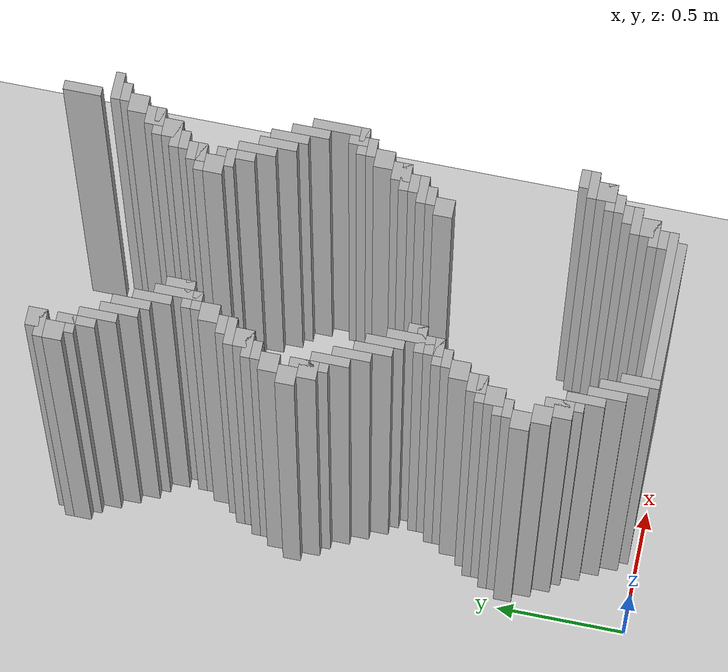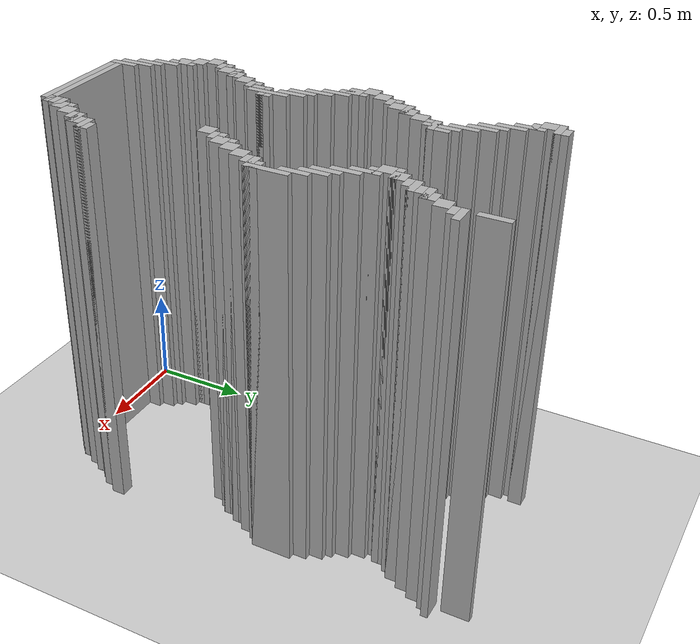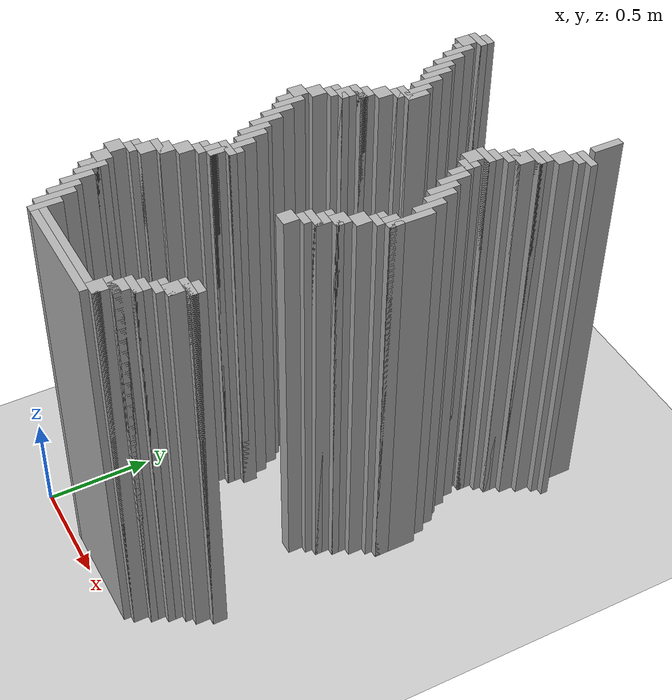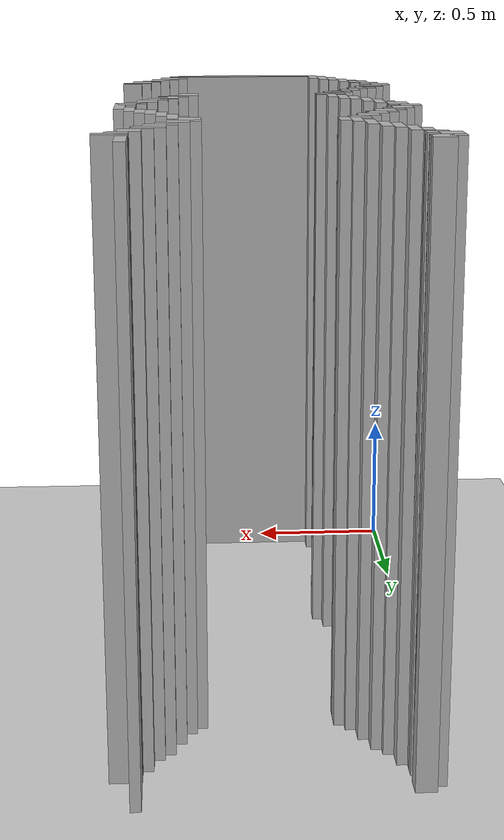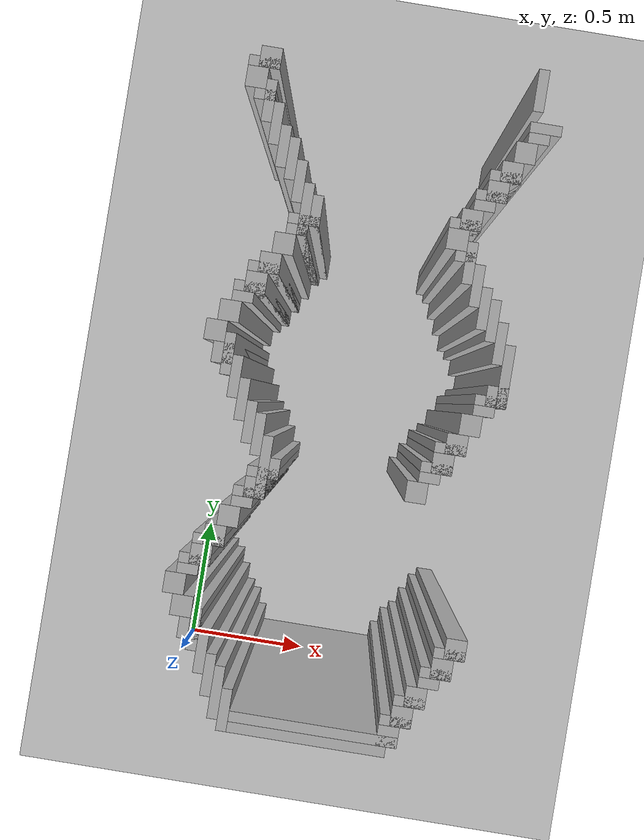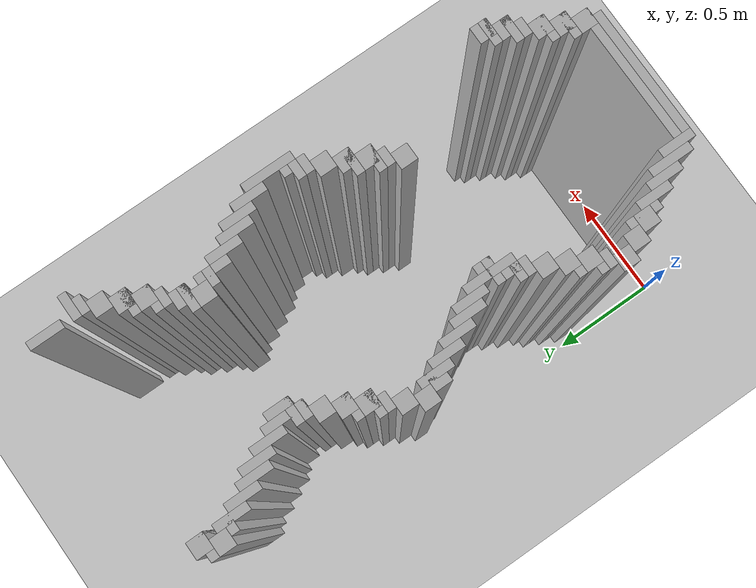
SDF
<sdf version="1.6">
 <world name="slam_world">
  <model name="ground_plane">
   <static>true</static>
   <link name="link">
    <collision name="collision">
     <geometry><plane><normal>0 0 1</normal><size>100 100</size></plane></geometry>
    </collision>
    <visual name="visual">
     <geometry><plane><normal>0 0 1</normal><size>100 100</size></plane></geometry>
     <material>
      <ambient>0.8 0.8 0.8 1</ambient>
      <diffuse>0.8 0.8 0.8 1</diffuse>
      <specular>0.8 0.8 0.8 1</specular>
     </material>
    </visual>
   </link>
  </model>
  <model name="wall_5102">
   <static>true</static>
   <pose>0.9918793503480278 2.262180974477958 1.0 0 0 0</pose>
   <link name="link">
    <collision name="collision">
     <geometry><box><size>0.03480278422273782 0.13921113689095127 2.0</size></box></geometry>
    </collision>
    <visual name="visual">
     <geometry><box><size>0.03480278422273782 0.13921113689095127 2.0</size></box></geometry>
     <material><ambient>0.5 0.5 0.5 1</ambient><diffuse>0.7 0.7 0.7 1</diffuse></material>
    </visual>
   </link>
  </model>
  <model name="wall_5117">
   <static>true</static>
   <pose>0.10440835266821345 2.2273781902552203 1.0 0 0 0</pose>
   <link name="link">
    <collision name="collision">
     <geometry><box><size>0.06960556844547564 0.06960556844547564 2.0</size></box></geometry>
    </collision>
    <visual name="visual">
     <geometry><box><size>0.06960556844547564 0.06960556844547564 2.0</size></box></geometry>
     <material><ambient>0.5 0.5 0.5 1</ambient><diffuse>0.7 0.7 0.7 1</diffuse></material>
    </visual>
   </link>
  </model>
  <model name="wall_5133">
   <static>true</static>
   <pose>0.08700696055684454 2.2099767981438516 1.0 0 0 0</pose>
   <link name="link">
    <collision name="collision">
     <geometry><box><size>0.10440835266821345 0.03480278422273782 2.0</size></box></geometry>
    </collision>
    <visual name="visual">
     <geometry><box><size>0.10440835266821345 0.03480278422273782 2.0</size></box></geometry>
     <material><ambient>0.5 0.5 0.5 1</ambient><diffuse>0.7 0.7 0.7 1</diffuse></material>
    </visual>
   </link>
  </model>
  <model name="wall_5148">
   <static>true</static>
   <pose>0.06960556844547564 2.1577726218097446 1.0 0 0 0</pose>
   <link name="link">
    <collision name="collision">
     <geometry><box><size>0.06960556844547564 0.06960556844547564 2.0</size></box></geometry>
    </collision>
    <visual name="visual">
     <geometry><box><size>0.06960556844547564 0.06960556844547564 2.0</size></box></geometry>
     <material><ambient>0.5 0.5 0.5 1</ambient><diffuse>0.7 0.7 0.7 1</diffuse></material>
    </visual>
   </link>
  </model>
  <model name="wall_5159">
   <static>true</static>
   <pose>0.12180974477958237 2.088167053364269 1.0 0 0 0</pose>
   <link name="link">
    <collision name="collision">
     <geometry><box><size>0.03480278422273782 0.13921113689095127 2.0</size></box></geometry>
    </collision>
    <visual name="visual">
     <geometry><box><size>0.03480278422273782 0.13921113689095127 2.0</size></box></geometry>
     <material><ambient>0.5 0.5 0.5 1</ambient><diffuse>0.7 0.7 0.7 1</diffuse></material>
    </visual>
   </link>
  </model>
  <model name="wall_5160">
   <static>true</static>
   <pose>1.0266821345707655 2.140371229698376 1.0 0 0 0</pose>
   <link name="link">
    <collision name="collision">
     <geometry><box><size>0.10440835266821345 0.03480278422273782 2.0</size></box></geometry>
    </collision>
    <visual name="visual">
     <geometry><box><size>0.10440835266821345 0.03480278422273782 2.0</size></box></geometry>
     <material><ambient>0.5 0.5 0.5 1</ambient><diffuse>0.7 0.7 0.7 1</diffuse></material>
    </visual>
   </link>
  </model>
  <model name="wall_5178">
   <static>true</static>
   <pose>0.10440835266821345 2.105568445475638 1.0 0 0 0</pose>
   <link name="link">
    <collision name="collision">
     <geometry><box><size>0.06960556844547564 0.03480278422273782 2.0</size></box></geometry>
    </collision>
    <visual name="visual">
     <geometry><box><size>0.06960556844547564 0.03480278422273782 2.0</size></box></geometry>
     <material><ambient>0.5 0.5 0.5 1</ambient><diffuse>0.7 0.7 0.7 1</diffuse></material>
    </visual>
   </link>
  </model>
  <model name="wall_5179">
   <static>true</static>
   <pose>1.0092807424593968 2.105568445475638 1.0 0 0 0</pose>
   <link name="link">
    <collision name="collision">
     <geometry><box><size>0.06960556844547564 0.03480278422273782 2.0</size></box></geometry>
    </collision>
    <visual name="visual">
     <geometry><box><size>0.06960556844547564 0.03480278422273782 2.0</size></box></geometry>
     <material><ambient>0.5 0.5 0.5 1</ambient><diffuse>0.7 0.7 0.7 1</diffuse></material>
    </visual>
   </link>
  </model>
  <model name="wall_5193">
   <static>true</static>
   <pose>0.15661252900232017 2.0185614849187936 1.0 0 0 0</pose>
   <link name="link">
    <collision name="collision">
     <geometry><box><size>0.03480278422273782 0.13921113689095127 2.0</size></box></geometry>
    </collision>
    <visual name="visual">
     <geometry><box><size>0.03480278422273782 0.13921113689095127 2.0</size></box></geometry>
     <material><ambient>0.5 0.5 0.5 1</ambient><diffuse>0.7 0.7 0.7 1</diffuse></material>
    </visual>
   </link>
  </model>
  <model name="wall_5194">
   <static>true</static>
   <pose>0.974477958236659 2.053364269141531 1.0 0 0 0</pose>
   <link name="link">
    <collision name="collision">
     <geometry><box><size>0.06960556844547564 0.06960556844547564 2.0</size></box></geometry>
    </collision>
    <visual name="visual">
     <geometry><box><size>0.06960556844547564 0.06960556844547564 2.0</size></box></geometry>
     <material><ambient>0.5 0.5 0.5 1</ambient><diffuse>0.7 0.7 0.7 1</diffuse></material>
    </visual>
   </link>
  </model>
  <model name="wall_5208">
   <static>true</static>
   <pose>0.191415313225058 1.948955916473318 1.0 0 0 0</pose>
   <link name="link">
    <collision name="collision">
     <geometry><box><size>0.03480278422273782 0.13921113689095127 2.0</size></box></geometry>
    </collision>
    <visual name="visual">
     <geometry><box><size>0.03480278422273782 0.13921113689095127 2.0</size></box></geometry>
     <material><ambient>0.5 0.5 0.5 1</ambient><diffuse>0.7 0.7 0.7 1</diffuse></material>
    </visual>
   </link>
  </model>
  <model name="wall_5209">
   <static>true</static>
   <pose>0.9396751740139211 1.9837587006960555 1.0 0 0 0</pose>
   <link name="link">
    <collision name="collision">
     <geometry><box><size>0.06960556844547564 0.06960556844547564 2.0</size></box></geometry>
    </collision>
    <visual name="visual">
     <geometry><box><size>0.06960556844547564 0.06960556844547564 2.0</size></box></geometry>
     <material><ambient>0.5 0.5 0.5 1</ambient><diffuse>0.7 0.7 0.7 1</diffuse></material>
    </visual>
   </link>
  </model>
  <model name="wall_5223">
   <static>true</static>
   <pose>0.2262180974477958 1.91415313225058 1.0 0 0 0</pose>
   <link name="link">
    <collision name="collision">
     <geometry><box><size>0.03480278422273782 0.13921113689095127 2.0</size></box></geometry>
    </collision>
    <visual name="visual">
     <geometry><box><size>0.03480278422273782 0.13921113689095127 2.0</size></box></geometry>
     <material><ambient>0.5 0.5 0.5 1</ambient><diffuse>0.7 0.7 0.7 1</diffuse></material>
    </visual>
   </link>
  </model>
  <model name="wall_5224">
   <static>true</static>
   <pose>0.9222737819025522 1.9663573085846866 1.0 0 0 0</pose>
   <link name="link">
    <collision name="collision">
     <geometry><box><size>0.10440835266821345 0.03480278422273782 2.0</size></box></geometry>
    </collision>
    <visual name="visual">
     <geometry><box><size>0.10440835266821345 0.03480278422273782 2.0</size></box></geometry>
     <material><ambient>0.5 0.5 0.5 1</ambient><diffuse>0.7 0.7 0.7 1</diffuse></material>
    </visual>
   </link>
  </model>
  <model name="wall_5238">
   <static>true</static>
   <pose>0.9048723897911832 1.91415313225058 1.0 0 0 0</pose>
   <link name="link">
    <collision name="collision">
     <geometry><box><size>0.06960556844547564 0.06960556844547564 2.0</size></box></geometry>
    </collision>
    <visual name="visual">
     <geometry><box><size>0.06960556844547564 0.06960556844547564 2.0</size></box></geometry>
     <material><ambient>0.5 0.5 0.5 1</ambient><diffuse>0.7 0.7 0.7 1</diffuse></material>
    </visual>
   </link>
  </model>
  <model name="wall_5248">
   <static>true</static>
   <pose>0.2610208816705336 1.8445475638051043 1.0 0 0 0</pose>
   <link name="link">
    <collision name="collision">
     <geometry><box><size>0.03480278422273782 0.13921113689095127 2.0</size></box></geometry>
    </collision>
    <visual name="visual">
     <geometry><box><size>0.03480278422273782 0.13921113689095127 2.0</size></box></geometry>
     <material><ambient>0.5 0.5 0.5 1</ambient><diffuse>0.7 0.7 0.7 1</diffuse></material>
    </visual>
   </link>
  </model>
  <model name="wall_5249">
   <static>true</static>
   <pose>0.8874709976798143 1.896751740139211 1.0 0 0 0</pose>
   <link name="link">
    <collision name="collision">
     <geometry><box><size>0.10440835266821345 0.03480278422273782 2.0</size></box></geometry>
    </collision>
    <visual name="visual">
     <geometry><box><size>0.10440835266821345 0.03480278422273782 2.0</size></box></geometry>
     <material><ambient>0.5 0.5 0.5 1</ambient><diffuse>0.7 0.7 0.7 1</diffuse></material>
    </visual>
   </link>
  </model>
  <model name="wall_5263">
   <static>true</static>
   <pose>0.8700696055684455 1.8619489559164732 1.0 0 0 0</pose>
   <link name="link">
    <collision name="collision">
     <geometry><box><size>0.06960556844547564 0.03480278422273782 2.0</size></box></geometry>
    </collision>
    <visual name="visual">
     <geometry><box><size>0.06960556844547564 0.03480278422273782 2.0</size></box></geometry>
     <material><ambient>0.5 0.5 0.5 1</ambient><diffuse>0.7 0.7 0.7 1</diffuse></material>
    </visual>
   </link>
  </model>
  <model name="wall_5272">
   <static>true</static>
   <pose>0.29582366589327147 1.75754060324826 1.0 0 0 0</pose>
   <link name="link">
    <collision name="collision">
     <geometry><box><size>0.03480278422273782 0.17401392111368907 2.0</size></box></geometry>
    </collision>
    <visual name="visual">
     <geometry><box><size>0.03480278422273782 0.17401392111368907 2.0</size></box></geometry>
     <material><ambient>0.5 0.5 0.5 1</ambient><diffuse>0.7 0.7 0.7 1</diffuse></material>
    </visual>
   </link>
  </model>
  <model name="wall_5273">
   <static>true</static>
   <pose>0.8352668213457076 1.8097447795823665 1.0 0 0 0</pose>
   <link name="link">
    <collision name="collision">
     <geometry><box><size>0.06960556844547564 0.06960556844547564 2.0</size></box></geometry>
    </collision>
    <visual name="visual">
     <geometry><box><size>0.06960556844547564 0.06960556844547564 2.0</size></box></geometry>
     <material><ambient>0.5 0.5 0.5 1</ambient><diffuse>0.7 0.7 0.7 1</diffuse></material>
    </visual>
   </link>
  </model>
  <model name="wall_5287">
   <static>true</static>
   <pose>0.3306264501160093 1.75754060324826 1.0 0 0 0</pose>
   <link name="link">
    <collision name="collision">
     <geometry><box><size>0.03480278422273782 0.10440835266821345 2.0</size></box></geometry>
    </collision>
    <visual name="visual">
     <geometry><box><size>0.03480278422273782 0.10440835266821345 2.0</size></box></geometry>
     <material><ambient>0.5 0.5 0.5 1</ambient><diffuse>0.7 0.7 0.7 1</diffuse></material>
    </visual>
   </link>
  </model>
  <model name="wall_5288">
   <static>true</static>
   <pose>0.8178654292343387 1.7923433874709975 1.0 0 0 0</pose>
   <link name="link">
    <collision name="collision">
     <geometry><box><size>0.10440835266821345 0.03480278422273782 2.0</size></box></geometry>
    </collision>
    <visual name="visual">
     <geometry><box><size>0.10440835266821345 0.03480278422273782 2.0</size></box></geometry>
     <material><ambient>0.5 0.5 0.5 1</ambient><diffuse>0.7 0.7 0.7 1</diffuse></material>
    </visual>
   </link>
  </model>
  <model name="wall_5302">
   <static>true</static>
   <pose>0.8004640371229698 1.740139211136891 1.0 0 0 0</pose>
   <link name="link">
    <collision name="collision">
     <geometry><box><size>0.06960556844547564 0.06960556844547564 2.0</size></box></geometry>
    </collision>
    <visual name="visual">
     <geometry><box><size>0.06960556844547564 0.06960556844547564 2.0</size></box></geometry>
     <material><ambient>0.5 0.5 0.5 1</ambient><diffuse>0.7 0.7 0.7 1</diffuse></material>
    </visual>
   </link>
  </model>
  <model name="wall_5314">
   <static>true</static>
   <pose>0.29582366589327147 1.722737819025522 1.0 0 0 0</pose>
   <link name="link">
    <collision name="collision">
     <geometry><box><size>0.10440835266821345 0.03480278422273782 2.0</size></box></geometry>
    </collision>
    <visual name="visual">
     <geometry><box><size>0.10440835266821345 0.03480278422273782 2.0</size></box></geometry>
     <material><ambient>0.5 0.5 0.5 1</ambient><diffuse>0.7 0.7 0.7 1</diffuse></material>
    </visual>
   </link>
  </model>
  <model name="wall_5315">
   <static>true</static>
   <pose>0.8526682134570766 1.6705336426914152 1.0 0 0 0</pose>
   <link name="link">
    <collision name="collision">
     <geometry><box><size>0.03480278422273782 0.13921113689095127 2.0</size></box></geometry>
    </collision>
    <visual name="visual">
     <geometry><box><size>0.03480278422273782 0.13921113689095127 2.0</size></box></geometry>
     <material><ambient>0.5 0.5 0.5 1</ambient><diffuse>0.7 0.7 0.7 1</diffuse></material>
    </visual>
   </link>
  </model>
  <model name="wall_5327">
   <static>true</static>
   <pose>0.27842227378190254 1.6879350348027842 1.0 0 0 0</pose>
   <link name="link">
    <collision name="collision">
     <geometry><box><size>0.06960556844547564 0.03480278422273782 2.0</size></box></geometry>
    </collision>
    <visual name="visual">
     <geometry><box><size>0.06960556844547564 0.03480278422273782 2.0</size></box></geometry>
     <material><ambient>0.5 0.5 0.5 1</ambient><diffuse>0.7 0.7 0.7 1</diffuse></material>
    </visual>
   </link>
  </model>
  <model name="wall_5328">
   <static>true</static>
   <pose>0.8352668213457076 1.6879350348027842 1.0 0 0 0</pose>
   <link name="link">
    <collision name="collision">
     <geometry><box><size>0.06960556844547564 0.03480278422273782 2.0</size></box></geometry>
    </collision>
    <visual name="visual">
     <geometry><box><size>0.06960556844547564 0.03480278422273782 2.0</size></box></geometry>
     <material><ambient>0.5 0.5 0.5 1</ambient><diffuse>0.7 0.7 0.7 1</diffuse></material>
    </visual>
   </link>
  </model>
  <model name="wall_5340">
   <static>true</static>
   <pose>0.24361948955916474 1.6357308584686774 1.0 0 0 0</pose>
   <link name="link">
    <collision name="collision">
     <geometry><box><size>0.06960556844547564 0.06960556844547564 2.0</size></box></geometry>
    </collision>
    <visual name="visual">
     <geometry><box><size>0.06960556844547564 0.06960556844547564 2.0</size></box></geometry>
     <material><ambient>0.5 0.5 0.5 1</ambient><diffuse>0.7 0.7 0.7 1</diffuse></material>
    </visual>
   </link>
  </model>
  <model name="wall_5341">
   <static>true</static>
   <pose>0.8874709976798143 1.6009280742459395 1.0 0 0 0</pose>
   <link name="link">
    <collision name="collision">
     <geometry><box><size>0.03480278422273782 0.13921113689095127 2.0</size></box></geometry>
    </collision>
    <visual name="visual">
     <geometry><box><size>0.03480278422273782 0.13921113689095127 2.0</size></box></geometry>
     <material><ambient>0.5 0.5 0.5 1</ambient><diffuse>0.7 0.7 0.7 1</diffuse></material>
    </visual>
   </link>
  </model>
  <model name="wall_5353">
   <static>true</static>
   <pose>0.2088167053364269 1.5661252900232019 1.0 0 0 0</pose>
   <link name="link">
    <collision name="collision">
     <geometry><box><size>0.06960556844547564 0.06960556844547564 2.0</size></box></geometry>
    </collision>
    <visual name="visual">
     <geometry><box><size>0.06960556844547564 0.06960556844547564 2.0</size></box></geometry>
     <material><ambient>0.5 0.5 0.5 1</ambient><diffuse>0.7 0.7 0.7 1</diffuse></material>
    </visual>
   </link>
  </model>
  <model name="wall_5354">
   <static>true</static>
   <pose>0.9222737819025522 1.531322505800464 1.0 0 0 0</pose>
   <link name="link">
    <collision name="collision">
     <geometry><box><size>0.03480278422273782 0.13921113689095127 2.0</size></box></geometry>
    </collision>
    <visual name="visual">
     <geometry><box><size>0.03480278422273782 0.13921113689095127 2.0</size></box></geometry>
     <material><ambient>0.5 0.5 0.5 1</ambient><diffuse>0.7 0.7 0.7 1</diffuse></material>
    </visual>
   </link>
  </model>
  <model name="wall_5366">
   <static>true</static>
   <pose>0.191415313225058 1.548723897911833 1.0 0 0 0</pose>
   <link name="link">
    <collision name="collision">
     <geometry><box><size>0.10440835266821345 0.03480278422273782 2.0</size></box></geometry>
    </collision>
    <visual name="visual">
     <geometry><box><size>0.10440835266821345 0.03480278422273782 2.0</size></box></geometry>
     <material><ambient>0.5 0.5 0.5 1</ambient><diffuse>0.7 0.7 0.7 1</diffuse></material>
    </visual>
   </link>
  </model>
  <model name="wall_5367">
   <static>true</static>
   <pose>0.95707656612529 1.4965197215777262 1.0 0 0 0</pose>
   <link name="link">
    <collision name="collision">
     <geometry><box><size>0.03480278422273782 0.13921113689095127 2.0</size></box></geometry>
    </collision>
    <visual name="visual">
     <geometry><box><size>0.03480278422273782 0.13921113689095127 2.0</size></box></geometry>
     <material><ambient>0.5 0.5 0.5 1</ambient><diffuse>0.7 0.7 0.7 1</diffuse></material>
    </visual>
   </link>
  </model>
  <model name="wall_5379">
   <static>true</static>
   <pose>0.17401392111368907 1.4965197215777262 1.0 0 0 0</pose>
   <link name="link">
    <collision name="collision">
     <geometry><box><size>0.06960556844547564 0.06960556844547564 2.0</size></box></geometry>
    </collision>
    <visual name="visual">
     <geometry><box><size>0.06960556844547564 0.06960556844547564 2.0</size></box></geometry>
     <material><ambient>0.5 0.5 0.5 1</ambient><diffuse>0.7 0.7 0.7 1</diffuse></material>
    </visual>
   </link>
  </model>
  <model name="wall_5388">
   <static>true</static>
   <pose>0.15661252900232017 1.4791183294663572 1.0 0 0 0</pose>
   <link name="link">
    <collision name="collision">
     <geometry><box><size>0.10440835266821345 0.03480278422273782 2.0</size></box></geometry>
    </collision>
    <visual name="visual">
     <geometry><box><size>0.10440835266821345 0.03480278422273782 2.0</size></box></geometry>
     <material><ambient>0.5 0.5 0.5 1</ambient><diffuse>0.7 0.7 0.7 1</diffuse></material>
    </visual>
   </link>
  </model>
  <model name="wall_5389">
   <static>true</static>
   <pose>0.9918793503480278 1.4269141531322505 1.0 0 0 0</pose>
   <link name="link">
    <collision name="collision">
     <geometry><box><size>0.03480278422273782 0.13921113689095127 2.0</size></box></geometry>
    </collision>
    <visual name="visual">
     <geometry><box><size>0.03480278422273782 0.13921113689095127 2.0</size></box></geometry>
     <material><ambient>0.5 0.5 0.5 1</ambient><diffuse>0.7 0.7 0.7 1</diffuse></material>
    </visual>
   </link>
  </model>
  <model name="wall_5401">
   <static>true</static>
   <pose>0.13921113689095127 1.4443155452436194 1.0 0 0 0</pose>
   <link name="link">
    <collision name="collision">
     <geometry><box><size>0.06960556844547564 0.03480278422273782 2.0</size></box></geometry>
    </collision>
    <visual name="visual">
     <geometry><box><size>0.06960556844547564 0.03480278422273782 2.0</size></box></geometry>
     <material><ambient>0.5 0.5 0.5 1</ambient><diffuse>0.7 0.7 0.7 1</diffuse></material>
    </visual>
   </link>
  </model>
  <model name="wall_5408">
   <static>true</static>
   <pose>0.10440835266821345 1.3921113689095126 1.0 0 0 0</pose>
   <link name="link">
    <collision name="collision">
     <geometry><box><size>0.06960556844547564 0.06960556844547564 2.0</size></box></geometry>
    </collision>
    <visual name="visual">
     <geometry><box><size>0.06960556844547564 0.06960556844547564 2.0</size></box></geometry>
     <material><ambient>0.5 0.5 0.5 1</ambient><diffuse>0.7 0.7 0.7 1</diffuse></material>
    </visual>
   </link>
  </model>
  <model name="wall_5409">
   <static>true</static>
   <pose>1.0266821345707655 1.322505800464037 1.0 0 0 0</pose>
   <link name="link">
    <collision name="collision">
     <geometry><box><size>0.03480278422273782 0.2088167053364269 2.0</size></box></geometry>
    </collision>
    <visual name="visual">
     <geometry><box><size>0.03480278422273782 0.2088167053364269 2.0</size></box></geometry>
     <material><ambient>0.5 0.5 0.5 1</ambient><diffuse>0.7 0.7 0.7 1</diffuse></material>
    </visual>
   </link>
  </model>
  <model name="wall_5431">
   <static>true</static>
   <pose>0.06960556844547564 1.322505800464037 1.0 0 0 0</pose>
   <link name="link">
    <collision name="collision">
     <geometry><box><size>0.06960556844547564 0.06960556844547564 2.0</size></box></geometry>
    </collision>
    <visual name="visual">
     <geometry><box><size>0.06960556844547564 0.06960556844547564 2.0</size></box></geometry>
     <material><ambient>0.5 0.5 0.5 1</ambient><diffuse>0.7 0.7 0.7 1</diffuse></material>
    </visual>
   </link>
  </model>
  <model name="wall_5443">
   <static>true</static>
   <pose>0.12180974477958237 1.2529002320185614 1.0 0 0 0</pose>
   <link name="link">
    <collision name="collision">
     <geometry><box><size>0.03480278422273782 0.13921113689095127 2.0</size></box></geometry>
    </collision>
    <visual name="visual">
     <geometry><box><size>0.03480278422273782 0.13921113689095127 2.0</size></box></geometry>
     <material><ambient>0.5 0.5 0.5 1</ambient><diffuse>0.7 0.7 0.7 1</diffuse></material>
    </visual>
   </link>
  </model>
  <model name="wall_5455">
   <static>true</static>
   <pose>0.10440835266821345 1.2529002320185614 1.0 0 0 0</pose>
   <link name="link">
    <collision name="collision">
     <geometry><box><size>0.06960556844547564 0.06960556844547564 2.0</size></box></geometry>
    </collision>
    <visual name="visual">
     <geometry><box><size>0.06960556844547564 0.06960556844547564 2.0</size></box></geometry>
     <material><ambient>0.5 0.5 0.5 1</ambient><diffuse>0.7 0.7 0.7 1</diffuse></material>
    </visual>
   </link>
  </model>
  <model name="wall_5456">
   <static>true</static>
   <pose>1.0092807424593968 1.2529002320185614 1.0 0 0 0</pose>
   <link name="link">
    <collision name="collision">
     <geometry><box><size>0.06960556844547564 0.06960556844547564 2.0</size></box></geometry>
    </collision>
    <visual name="visual">
     <geometry><box><size>0.06960556844547564 0.06960556844547564 2.0</size></box></geometry>
     <material><ambient>0.5 0.5 0.5 1</ambient><diffuse>0.7 0.7 0.7 1</diffuse></material>
    </visual>
   </link>
  </model>
  <model name="wall_5470">
   <static>true</static>
   <pose>0.15661252900232017 1.1832946635730859 1.0 0 0 0</pose>
   <link name="link">
    <collision name="collision">
     <geometry><box><size>0.03480278422273782 0.13921113689095127 2.0</size></box></geometry>
    </collision>
    <visual name="visual">
     <geometry><box><size>0.03480278422273782 0.13921113689095127 2.0</size></box></geometry>
     <material><ambient>0.5 0.5 0.5 1</ambient><diffuse>0.7 0.7 0.7 1</diffuse></material>
    </visual>
   </link>
  </model>
  <model name="wall_5471">
   <static>true</static>
   <pose>0.9918793503480278 1.2354988399071924 1.0 0 0 0</pose>
   <link name="link">
    <collision name="collision">
     <geometry><box><size>0.10440835266821345 0.03480278422273782 2.0</size></box></geometry>
    </collision>
    <visual name="visual">
     <geometry><box><size>0.10440835266821345 0.03480278422273782 2.0</size></box></geometry>
     <material><ambient>0.5 0.5 0.5 1</ambient><diffuse>0.7 0.7 0.7 1</diffuse></material>
    </visual>
   </link>
  </model>
  <model name="wall_5485">
   <static>true</static>
   <pose>0.974477958236659 1.2006960556844548 1.0 0 0 0</pose>
   <link name="link">
    <collision name="collision">
     <geometry><box><size>0.06960556844547564 0.03480278422273782 2.0</size></box></geometry>
    </collision>
    <visual name="visual">
     <geometry><box><size>0.06960556844547564 0.03480278422273782 2.0</size></box></geometry>
     <material><ambient>0.5 0.5 0.5 1</ambient><diffuse>0.7 0.7 0.7 1</diffuse></material>
    </visual>
   </link>
  </model>
  <model name="wall_5497">
   <static>true</static>
   <pose>0.191415313225058 1.1136890951276102 1.0 0 0 0</pose>
   <link name="link">
    <collision name="collision">
     <geometry><box><size>0.03480278422273782 0.13921113689095127 2.0</size></box></geometry>
    </collision>
    <visual name="visual">
     <geometry><box><size>0.03480278422273782 0.13921113689095127 2.0</size></box></geometry>
     <material><ambient>0.5 0.5 0.5 1</ambient><diffuse>0.7 0.7 0.7 1</diffuse></material>
    </visual>
   </link>
  </model>
  <model name="wall_5498">
   <static>true</static>
   <pose>0.9396751740139211 1.148491879350348 1.0 0 0 0</pose>
   <link name="link">
    <collision name="collision">
     <geometry><box><size>0.06960556844547564 0.06960556844547564 2.0</size></box></geometry>
    </collision>
    <visual name="visual">
     <geometry><box><size>0.06960556844547564 0.06960556844547564 2.0</size></box></geometry>
     <material><ambient>0.5 0.5 0.5 1</ambient><diffuse>0.7 0.7 0.7 1</diffuse></material>
    </visual>
   </link>
  </model>
  <model name="wall_5512">
   <static>true</static>
   <pose>0.2262180974477958 1.0440835266821344 1.0 0 0 0</pose>
   <link name="link">
    <collision name="collision">
     <geometry><box><size>0.03480278422273782 0.13921113689095127 2.0</size></box></geometry>
    </collision>
    <visual name="visual">
     <geometry><box><size>0.03480278422273782 0.13921113689095127 2.0</size></box></geometry>
     <material><ambient>0.5 0.5 0.5 1</ambient><diffuse>0.7 0.7 0.7 1</diffuse></material>
    </visual>
   </link>
  </model>
  <model name="wall_5513">
   <static>true</static>
   <pose>0.9048723897911832 1.0788863109048723 1.0 0 0 0</pose>
   <link name="link">
    <collision name="collision">
     <geometry><box><size>0.06960556844547564 0.06960556844547564 2.0</size></box></geometry>
    </collision>
    <visual name="visual">
     <geometry><box><size>0.06960556844547564 0.06960556844547564 2.0</size></box></geometry>
     <material><ambient>0.5 0.5 0.5 1</ambient><diffuse>0.7 0.7 0.7 1</diffuse></material>
    </visual>
   </link>
  </model>
  <model name="wall_5527">
   <static>true</static>
   <pose>0.2610208816705336 1.0092807424593968 1.0 0 0 0</pose>
   <link name="link">
    <collision name="collision">
     <geometry><box><size>0.03480278422273782 0.13921113689095127 2.0</size></box></geometry>
    </collision>
    <visual name="visual">
     <geometry><box><size>0.03480278422273782 0.13921113689095127 2.0</size></box></geometry>
     <material><ambient>0.5 0.5 0.5 1</ambient><diffuse>0.7 0.7 0.7 1</diffuse></material>
    </visual>
   </link>
  </model>
  <model name="wall_5528">
   <static>true</static>
   <pose>0.8874709976798143 1.0614849187935034 1.0 0 0 0</pose>
   <link name="link">
    <collision name="collision">
     <geometry><box><size>0.10440835266821345 0.03480278422273782 2.0</size></box></geometry>
    </collision>
    <visual name="visual">
     <geometry><box><size>0.10440835266821345 0.03480278422273782 2.0</size></box></geometry>
     <material><ambient>0.5 0.5 0.5 1</ambient><diffuse>0.7 0.7 0.7 1</diffuse></material>
    </visual>
   </link>
  </model>
  <model name="wall_5542">
   <static>true</static>
   <pose>0.8700696055684455 1.0092807424593968 1.0 0 0 0</pose>
   <link name="link">
    <collision name="collision">
     <geometry><box><size>0.06960556844547564 0.06960556844547564 2.0</size></box></geometry>
    </collision>
    <visual name="visual">
     <geometry><box><size>0.06960556844547564 0.06960556844547564 2.0</size></box></geometry>
     <material><ambient>0.5 0.5 0.5 1</ambient><diffuse>0.7 0.7 0.7 1</diffuse></material>
    </visual>
   </link>
  </model>
  <model name="wall_5551">
   <static>true</static>
   <pose>0.29582366589327147 0.9048723897911832 1.0 0 0 0</pose>
   <link name="link">
    <collision name="collision">
     <geometry><box><size>0.03480278422273782 0.2088167053364269 2.0</size></box></geometry>
    </collision>
    <visual name="visual">
     <geometry><box><size>0.03480278422273782 0.2088167053364269 2.0</size></box></geometry>
     <material><ambient>0.5 0.5 0.5 1</ambient><diffuse>0.7 0.7 0.7 1</diffuse></material>
    </visual>
   </link>
  </model>
  <model name="wall_5552">
   <static>true</static>
   <pose>0.8526682134570766 0.9918793503480278 1.0 0 0 0</pose>
   <link name="link">
    <collision name="collision">
     <geometry><box><size>0.10440835266821345 0.03480278422273782 2.0</size></box></geometry>
    </collision>
    <visual name="visual">
     <geometry><box><size>0.10440835266821345 0.03480278422273782 2.0</size></box></geometry>
     <material><ambient>0.5 0.5 0.5 1</ambient><diffuse>0.7 0.7 0.7 1</diffuse></material>
    </visual>
   </link>
  </model>
  <model name="wall_5566">
   <static>true</static>
   <pose>0.8352668213457076 0.95707656612529 1.0 0 0 0</pose>
   <link name="link">
    <collision name="collision">
     <geometry><box><size>0.06960556844547564 0.03480278422273782 2.0</size></box></geometry>
    </collision>
    <visual name="visual">
     <geometry><box><size>0.06960556844547564 0.03480278422273782 2.0</size></box></geometry>
     <material><ambient>0.5 0.5 0.5 1</ambient><diffuse>0.7 0.7 0.7 1</diffuse></material>
    </visual>
   </link>
  </model>
  <model name="wall_5575">
   <static>true</static>
   <pose>0.3306264501160093 0.9048723897911832 1.0 0 0 0</pose>
   <link name="link">
    <collision name="collision">
     <geometry><box><size>0.03480278422273782 0.06960556844547564 2.0</size></box></geometry>
    </collision>
    <visual name="visual">
     <geometry><box><size>0.03480278422273782 0.06960556844547564 2.0</size></box></geometry>
     <material><ambient>0.5 0.5 0.5 1</ambient><diffuse>0.7 0.7 0.7 1</diffuse></material>
    </visual>
   </link>
  </model>
  <model name="wall_5576">
   <static>true</static>
   <pose>0.8004640371229698 0.9048723897911832 1.0 0 0 0</pose>
   <link name="link">
    <collision name="collision">
     <geometry><box><size>0.06960556844547564 0.06960556844547564 2.0</size></box></geometry>
    </collision>
    <visual name="visual">
     <geometry><box><size>0.06960556844547564 0.06960556844547564 2.0</size></box></geometry>
     <material><ambient>0.5 0.5 0.5 1</ambient><diffuse>0.7 0.7 0.7 1</diffuse></material>
    </visual>
   </link>
  </model>
  <model name="wall_5588">
   <static>true</static>
   <pose>0.29582366589327147 0.8874709976798143 1.0 0 0 0</pose>
   <link name="link">
    <collision name="collision">
     <geometry><box><size>0.10440835266821345 0.03480278422273782 2.0</size></box></geometry>
    </collision>
    <visual name="visual">
     <geometry><box><size>0.10440835266821345 0.03480278422273782 2.0</size></box></geometry>
     <material><ambient>0.5 0.5 0.5 1</ambient><diffuse>0.7 0.7 0.7 1</diffuse></material>
    </visual>
   </link>
  </model>
  <model name="wall_5595">
   <static>true</static>
   <pose>0.27842227378190254 0.8352668213457076 1.0 0 0 0</pose>
   <link name="link">
    <collision name="collision">
     <geometry><box><size>0.06960556844547564 0.06960556844547564 2.0</size></box></geometry>
    </collision>
    <visual name="visual">
     <geometry><box><size>0.06960556844547564 0.06960556844547564 2.0</size></box></geometry>
     <material><ambient>0.5 0.5 0.5 1</ambient><diffuse>0.7 0.7 0.7 1</diffuse></material>
    </visual>
   </link>
  </model>
  <model name="wall_5602">
   <static>true</static>
   <pose>0.2610208816705336 0.8178654292343387 1.0 0 0 0</pose>
   <link name="link">
    <collision name="collision">
     <geometry><box><size>0.10440835266821345 0.03480278422273782 2.0</size></box></geometry>
    </collision>
    <visual name="visual">
     <geometry><box><size>0.10440835266821345 0.03480278422273782 2.0</size></box></geometry>
     <material><ambient>0.5 0.5 0.5 1</ambient><diffuse>0.7 0.7 0.7 1</diffuse></material>
    </visual>
   </link>
  </model>
  <model name="wall_5609">
   <static>true</static>
   <pose>0.24361948955916474 0.7830626450116009 1.0 0 0 0</pose>
   <link name="link">
    <collision name="collision">
     <geometry><box><size>0.06960556844547564 0.03480278422273782 2.0</size></box></geometry>
    </collision>
    <visual name="visual">
     <geometry><box><size>0.06960556844547564 0.03480278422273782 2.0</size></box></geometry>
     <material><ambient>0.5 0.5 0.5 1</ambient><diffuse>0.7 0.7 0.7 1</diffuse></material>
    </visual>
   </link>
  </model>
  <model name="wall_5613">
   <static>true</static>
   <pose>0.2088167053364269 0.7308584686774942 1.0 0 0 0</pose>
   <link name="link">
    <collision name="collision">
     <geometry><box><size>0.06960556844547564 0.06960556844547564 2.0</size></box></geometry>
    </collision>
    <visual name="visual">
     <geometry><box><size>0.06960556844547564 0.06960556844547564 2.0</size></box></geometry>
     <material><ambient>0.5 0.5 0.5 1</ambient><diffuse>0.7 0.7 0.7 1</diffuse></material>
    </visual>
   </link>
  </model>
  <model name="wall_5620">
   <static>true</static>
   <pose>0.17401392111368907 0.6612529002320185 1.0 0 0 0</pose>
   <link name="link">
    <collision name="collision">
     <geometry><box><size>0.06960556844547564 0.06960556844547564 2.0</size></box></geometry>
    </collision>
    <visual name="visual">
     <geometry><box><size>0.06960556844547564 0.06960556844547564 2.0</size></box></geometry>
     <material><ambient>0.5 0.5 0.5 1</ambient><diffuse>0.7 0.7 0.7 1</diffuse></material>
    </visual>
   </link>
  </model>
  <model name="wall_5627">
   <static>true</static>
   <pose>0.15661252900232017 0.6438515081206496 1.0 0 0 0</pose>
   <link name="link">
    <collision name="collision">
     <geometry><box><size>0.10440835266821345 0.03480278422273782 2.0</size></box></geometry>
    </collision>
    <visual name="visual">
     <geometry><box><size>0.10440835266821345 0.03480278422273782 2.0</size></box></geometry>
     <material><ambient>0.5 0.5 0.5 1</ambient><diffuse>0.7 0.7 0.7 1</diffuse></material>
    </visual>
   </link>
  </model>
  <model name="wall_5634">
   <static>true</static>
   <pose>0.13921113689095127 0.5916473317865429 1.0 0 0 0</pose>
   <link name="link">
    <collision name="collision">
     <geometry><box><size>0.06960556844547564 0.06960556844547564 2.0</size></box></geometry>
    </collision>
    <visual name="visual">
     <geometry><box><size>0.06960556844547564 0.06960556844547564 2.0</size></box></geometry>
     <material><ambient>0.5 0.5 0.5 1</ambient><diffuse>0.7 0.7 0.7 1</diffuse></material>
    </visual>
   </link>
  </model>
  <model name="wall_5638">
   <static>true</static>
   <pose>0.12180974477958237 0.574245939675174 1.0 0 0 0</pose>
   <link name="link">
    <collision name="collision">
     <geometry><box><size>0.10440835266821345 0.03480278422273782 2.0</size></box></geometry>
    </collision>
    <visual name="visual">
     <geometry><box><size>0.10440835266821345 0.03480278422273782 2.0</size></box></geometry>
     <material><ambient>0.5 0.5 0.5 1</ambient><diffuse>0.7 0.7 0.7 1</diffuse></material>
    </visual>
   </link>
  </model>
  <model name="wall_5645">
   <static>true</static>
   <pose>0.10440835266821345 0.5394431554524362 1.0 0 0 0</pose>
   <link name="link">
    <collision name="collision">
     <geometry><box><size>0.06960556844547564 0.03480278422273782 2.0</size></box></geometry>
    </collision>
    <visual name="visual">
     <geometry><box><size>0.06960556844547564 0.03480278422273782 2.0</size></box></geometry>
     <material><ambient>0.5 0.5 0.5 1</ambient><diffuse>0.7 0.7 0.7 1</diffuse></material>
    </visual>
   </link>
  </model>
  <model name="wall_5649">
   <static>true</static>
   <pose>0.06960556844547564 0.4872389791183295 1.0 0 0 0</pose>
   <link name="link">
    <collision name="collision">
     <geometry><box><size>0.06960556844547564 0.06960556844547564 2.0</size></box></geometry>
    </collision>
    <visual name="visual">
     <geometry><box><size>0.06960556844547564 0.06960556844547564 2.0</size></box></geometry>
     <material><ambient>0.5 0.5 0.5 1</ambient><diffuse>0.7 0.7 0.7 1</diffuse></material>
    </visual>
   </link>
  </model>
  <model name="wall_5660">
   <static>true</static>
   <pose>0.10440835266821345 0.4176334106728538 1.0 0 0 0</pose>
   <link name="link">
    <collision name="collision">
     <geometry><box><size>0.06960556844547564 0.06960556844547564 2.0</size></box></geometry>
    </collision>
    <visual name="visual">
     <geometry><box><size>0.06960556844547564 0.06960556844547564 2.0</size></box></geometry>
     <material><ambient>0.5 0.5 0.5 1</ambient><diffuse>0.7 0.7 0.7 1</diffuse></material>
    </visual>
   </link>
  </model>
  <model name="wall_5661">
   <static>true</static>
   <pose>1.0092807424593968 0.4176334106728538 1.0 0 0 0</pose>
   <link name="link">
    <collision name="collision">
     <geometry><box><size>0.06960556844547564 0.06960556844547564 2.0</size></box></geometry>
    </collision>
    <visual name="visual">
     <geometry><box><size>0.06960556844547564 0.06960556844547564 2.0</size></box></geometry>
     <material><ambient>0.5 0.5 0.5 1</ambient><diffuse>0.7 0.7 0.7 1</diffuse></material>
    </visual>
   </link>
  </model>
  <model name="wall_5680">
   <static>true</static>
   <pose>0.15661252900232017 0.34802784222737815 1.0 0 0 0</pose>
   <link name="link">
    <collision name="collision">
     <geometry><box><size>0.03480278422273782 0.13921113689095127 2.0</size></box></geometry>
    </collision>
    <visual name="visual">
     <geometry><box><size>0.03480278422273782 0.13921113689095127 2.0</size></box></geometry>
     <material><ambient>0.5 0.5 0.5 1</ambient><diffuse>0.7 0.7 0.7 1</diffuse></material>
    </visual>
   </link>
  </model>
  <model name="wall_5681">
   <static>true</static>
   <pose>0.9918793503480278 0.4002320185614849 1.0 0 0 0</pose>
   <link name="link">
    <collision name="collision">
     <geometry><box><size>0.10440835266821345 0.03480278422273782 2.0</size></box></geometry>
    </collision>
    <visual name="visual">
     <geometry><box><size>0.10440835266821345 0.03480278422273782 2.0</size></box></geometry>
     <material><ambient>0.5 0.5 0.5 1</ambient><diffuse>0.7 0.7 0.7 1</diffuse></material>
    </visual>
   </link>
  </model>
  <model name="wall_5700">
   <static>true</static>
   <pose>0.13921113689095127 0.34802784222737815 1.0 0 0 0</pose>
   <link name="link">
    <collision name="collision">
     <geometry><box><size>0.06960556844547564 0.06960556844547564 2.0</size></box></geometry>
    </collision>
    <visual name="visual">
     <geometry><box><size>0.06960556844547564 0.06960556844547564 2.0</size></box></geometry>
     <material><ambient>0.5 0.5 0.5 1</ambient><diffuse>0.7 0.7 0.7 1</diffuse></material>
    </visual>
   </link>
  </model>
  <model name="wall_5701">
   <static>true</static>
   <pose>0.974477958236659 0.34802784222737815 1.0 0 0 0</pose>
   <link name="link">
    <collision name="collision">
     <geometry><box><size>0.06960556844547564 0.06960556844547564 2.0</size></box></geometry>
    </collision>
    <visual name="visual">
     <geometry><box><size>0.06960556844547564 0.06960556844547564 2.0</size></box></geometry>
     <material><ambient>0.5 0.5 0.5 1</ambient><diffuse>0.7 0.7 0.7 1</diffuse></material>
    </visual>
   </link>
  </model>
  <model name="wall_5720">
   <static>true</static>
   <pose>0.191415313225058 0.27842227378190254 1.0 0 0 0</pose>
   <link name="link">
    <collision name="collision">
     <geometry><box><size>0.03480278422273782 0.13921113689095127 2.0</size></box></geometry>
    </collision>
    <visual name="visual">
     <geometry><box><size>0.03480278422273782 0.13921113689095127 2.0</size></box></geometry>
     <material><ambient>0.5 0.5 0.5 1</ambient><diffuse>0.7 0.7 0.7 1</diffuse></material>
    </visual>
   </link>
  </model>
  <model name="wall_5721">
   <static>true</static>
   <pose>0.95707656612529 0.3306264501160093 1.0 0 0 0</pose>
   <link name="link">
    <collision name="collision">
     <geometry><box><size>0.10440835266821345 0.03480278422273782 2.0</size></box></geometry>
    </collision>
    <visual name="visual">
     <geometry><box><size>0.10440835266821345 0.03480278422273782 2.0</size></box></geometry>
     <material><ambient>0.5 0.5 0.5 1</ambient><diffuse>0.7 0.7 0.7 1</diffuse></material>
    </visual>
   </link>
  </model>
  <model name="wall_5740">
   <static>true</static>
   <pose>0.9396751740139211 0.29582366589327147 1.0 0 0 0</pose>
   <link name="link">
    <collision name="collision">
     <geometry><box><size>0.06960556844547564 0.03480278422273782 2.0</size></box></geometry>
    </collision>
    <visual name="visual">
     <geometry><box><size>0.06960556844547564 0.03480278422273782 2.0</size></box></geometry>
     <material><ambient>0.5 0.5 0.5 1</ambient><diffuse>0.7 0.7 0.7 1</diffuse></material>
    </visual>
   </link>
  </model>
  <model name="wall_5750">
   <static>true</static>
   <pose>0.2262180974477958 0.2088167053364269 1.0 0 0 0</pose>
   <link name="link">
    <collision name="collision">
     <geometry><box><size>0.03480278422273782 0.13921113689095127 2.0</size></box></geometry>
    </collision>
    <visual name="visual">
     <geometry><box><size>0.03480278422273782 0.13921113689095127 2.0</size></box></geometry>
     <material><ambient>0.5 0.5 0.5 1</ambient><diffuse>0.7 0.7 0.7 1</diffuse></material>
    </visual>
   </link>
  </model>
  <model name="wall_5751">
   <static>true</static>
   <pose>0.9048723897911832 0.24361948955916474 1.0 0 0 0</pose>
   <link name="link">
    <collision name="collision">
     <geometry><box><size>0.06960556844547564 0.06960556844547564 2.0</size></box></geometry>
    </collision>
    <visual name="visual">
     <geometry><box><size>0.06960556844547564 0.06960556844547564 2.0</size></box></geometry>
     <material><ambient>0.5 0.5 0.5 1</ambient><diffuse>0.7 0.7 0.7 1</diffuse></material>
    </visual>
   </link>
  </model>
  <model name="wall_5770">
   <static>true</static>
   <pose>0.2610208816705336 0.15661252900232017 1.0 0 0 0</pose>
   <link name="link">
    <collision name="collision">
     <geometry><box><size>0.03480278422273782 0.17401392111368907 2.0</size></box></geometry>
    </collision>
    <visual name="visual">
     <geometry><box><size>0.03480278422273782 0.17401392111368907 2.0</size></box></geometry>
     <material><ambient>0.5 0.5 0.5 1</ambient><diffuse>0.7 0.7 0.7 1</diffuse></material>
    </visual>
   </link>
  </model>
  <model name="wall_5771">
   <static>true</static>
   <pose>0.8874709976798143 0.2262180974477958 1.0 0 0 0</pose>
   <link name="link">
    <collision name="collision">
     <geometry><box><size>0.10440835266821345 0.03480278422273782 2.0</size></box></geometry>
    </collision>
    <visual name="visual">
     <geometry><box><size>0.10440835266821345 0.03480278422273782 2.0</size></box></geometry>
     <material><ambient>0.5 0.5 0.5 1</ambient><diffuse>0.7 0.7 0.7 1</diffuse></material>
    </visual>
   </link>
  </model>
  <model name="wall_5790">
   <static>true</static>
   <pose>0.8700696055684455 0.17401392111368907 1.0 0 0 0</pose>
   <link name="link">
    <collision name="collision">
     <geometry><box><size>0.06960556844547564 0.06960556844547564 2.0</size></box></geometry>
    </collision>
    <visual name="visual">
     <geometry><box><size>0.06960556844547564 0.06960556844547564 2.0</size></box></geometry>
     <material><ambient>0.5 0.5 0.5 1</ambient><diffuse>0.7 0.7 0.7 1</diffuse></material>
    </visual>
   </link>
  </model>
  <model name="wall_5800">
   <static>true</static>
   <pose>0.29582366589327147 0.10440835266821345 1.0 0 0 0</pose>
   <link name="link">
    <collision name="collision">
     <geometry><box><size>0.03480278422273782 0.13921113689095127 2.0</size></box></geometry>
    </collision>
    <visual name="visual">
     <geometry><box><size>0.03480278422273782 0.13921113689095127 2.0</size></box></geometry>
     <material><ambient>0.5 0.5 0.5 1</ambient><diffuse>0.7 0.7 0.7 1</diffuse></material>
    </visual>
   </link>
  </model>
  <model name="wall_5801">
   <static>true</static>
   <pose>0.8526682134570766 0.15661252900232017 1.0 0 0 0</pose>
   <link name="link">
    <collision name="collision">
     <geometry><box><size>0.10440835266821345 0.03480278422273782 2.0</size></box></geometry>
    </collision>
    <visual name="visual">
     <geometry><box><size>0.10440835266821345 0.03480278422273782 2.0</size></box></geometry>
     <material><ambient>0.5 0.5 0.5 1</ambient><diffuse>0.7 0.7 0.7 1</diffuse></material>
    </visual>
   </link>
  </model>
  <model name="wall_5820">
   <static>true</static>
   <pose>0.8352668213457076 0.10440835266821345 1.0 0 0 0</pose>
   <link name="link">
    <collision name="collision">
     <geometry><box><size>0.06960556844547564 0.06960556844547564 2.0</size></box></geometry>
    </collision>
    <visual name="visual">
     <geometry><box><size>0.06960556844547564 0.06960556844547564 2.0</size></box></geometry>
     <material><ambient>0.5 0.5 0.5 1</ambient><diffuse>0.7 0.7 0.7 1</diffuse></material>
    </visual>
   </link>
  </model>
  <model name="wall_5830">
   <static>true</static>
   <pose>0.5916473317865429 0.08700696055684454 1.0 0 0 0</pose>
   <link name="link">
    <collision name="collision">
     <geometry><box><size>0.5568445475638051 0.03480278422273782 2.0</size></box></geometry>
    </collision>
    <visual name="visual">
     <geometry><box><size>0.5568445475638051 0.03480278422273782 2.0</size></box></geometry>
     <material><ambient>0.5 0.5 0.5 1</ambient><diffuse>0.7 0.7 0.7 1</diffuse></material>
    </visual>
   </link>
  </model>
  <model name="wall_5841">
   <static>true</static>
   <pose>0.574245939675174 0.052204176334106726 1.0 0 0 0</pose>
   <link name="link">
    <collision name="collision">
     <geometry><box><size>0.5220417633410672 0.03480278422273782 2.0</size></box></geometry>
    </collision>
    <visual name="visual">
     <geometry><box><size>0.5220417633410672 0.03480278422273782 2.0</size></box></geometry>
     <material><ambient>0.5 0.5 0.5 1</ambient><diffuse>0.7 0.7 0.7 1</diffuse></material>
    </visual>
   </link>
  </model>
 </world>
</sdf>
